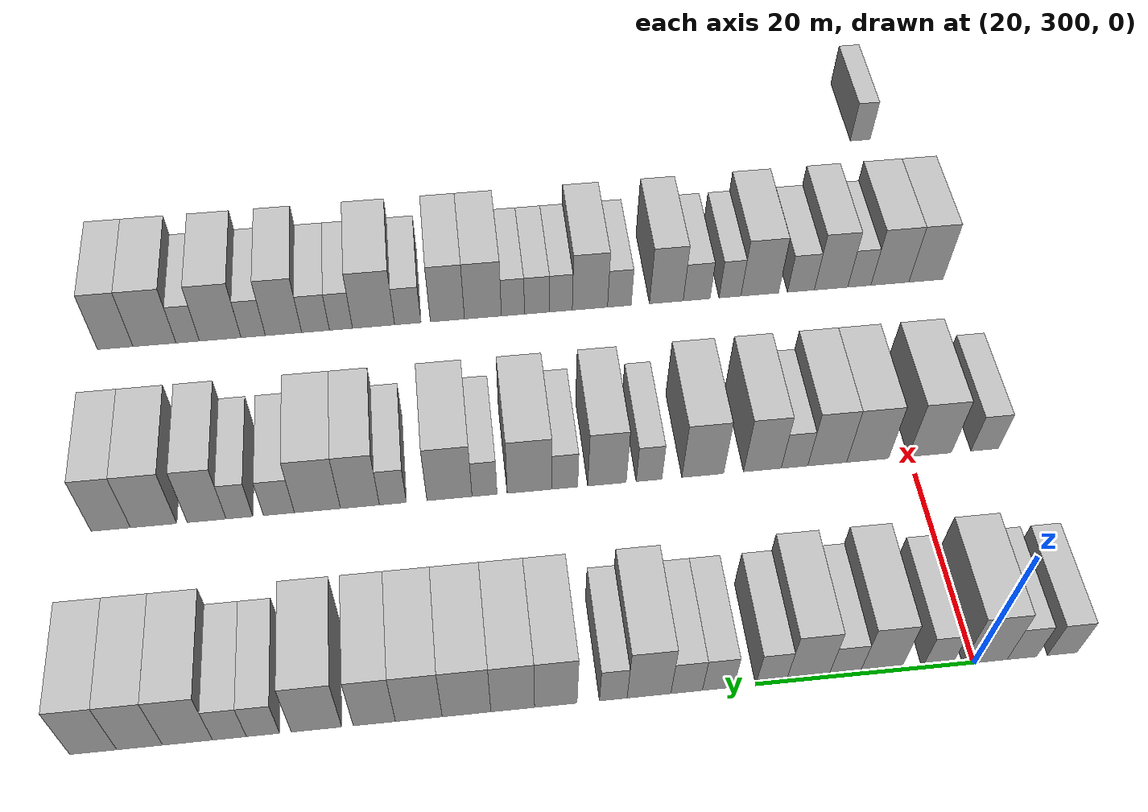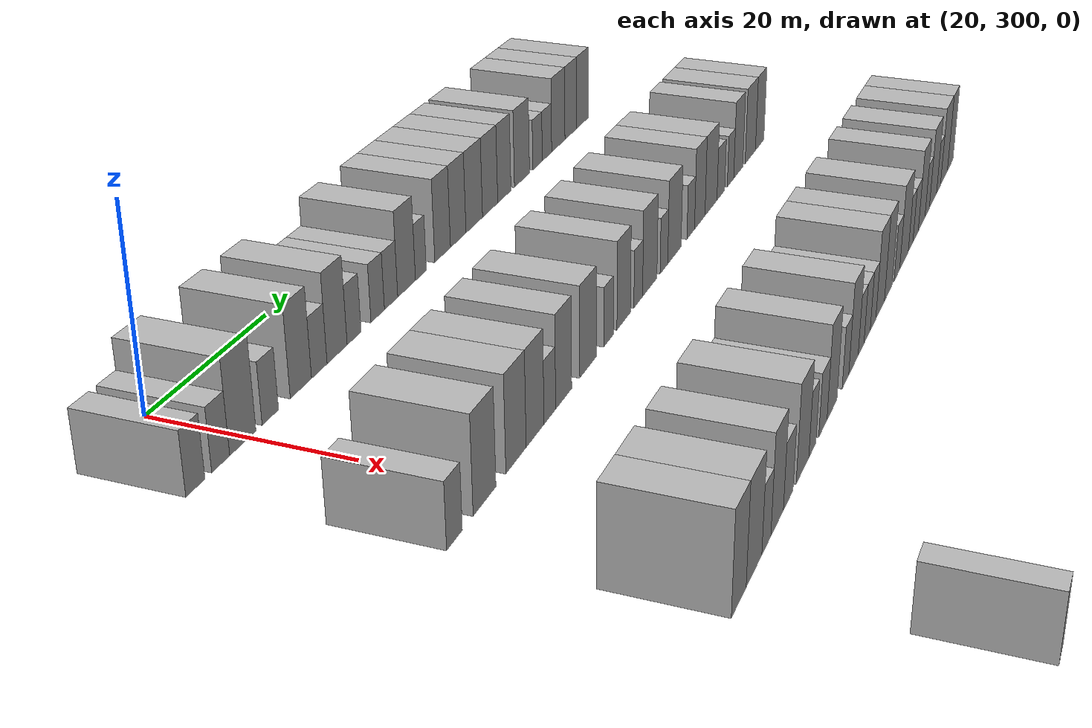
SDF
<sdf version="1.6">
 <world name="default">
  <model name="building_159">
   <static>1</static>
   <pose>25.0000 291.8429 0 0.000000 0.000000 0.000000</pose>
   <link name="link">
    <pose>0 0 3.00 0 0 0</pose>
    <collision name="collision"><geometry><box><size>10.0000 2.7710 6.0000</size></box></geometry></collision>
    <visual name="visual">
     <cast_shadows>0</cast_shadows>
     <geometry><box><size>10.0000 2.7710 6.0000</size></box></geometry>
     <material>
      <script>
       <uri>model://HANNAS_wall/materials/scripts</uri>
       <uri>model://HANNAS_wall/materials/textures</uri>
       <name>vrc/HANNAS_wall</name>
      </script>
     </material>
    </visual>
   </link>
  </model>
  <model name="building_160">
   <static>1</static>
   <pose>25.0000 295.5902 0 0.000000 0.000000 0.000000</pose>
   <link name="link">
    <pose>0 0 3.00 0 0 0</pose>
    <collision name="collision"><geometry><box><size>10.0000 2.7236 6.0000</size></box></geometry></collision>
    <visual name="visual">
     <cast_shadows>0</cast_shadows>
     <geometry><box><size>10.0000 2.7236 6.0000</size></box></geometry>
     <material>
      <script>
       <uri>model://HANNAS_wall/materials/scripts</uri>
       <uri>model://HANNAS_wall/materials/textures</uri>
       <name>vrc/HANNAS_wall</name>
      </script>
     </material>
    </visual>
   </link>
  </model>
  <model name="building_161">
   <static>1</static>
   <pose>25.0000 299.0204 0 0.000000 0.000000 0.000000</pose>
   <link name="link">
    <pose>0 0 4.50 0 0 0</pose>
    <collision name="collision"><geometry><box><size>10.0000 4.1368 9.0000</size></box></geometry></collision>
    <visual name="visual">
     <cast_shadows>0</cast_shadows>
     <geometry><box><size>10.0000 4.1368 9.0000</size></box></geometry>
     <material>
      <script>
       <uri>model://HANNAS_wall/materials/scripts</uri>
       <uri>model://HANNAS_wall/materials/textures</uri>
       <name>vrc/HANNAS_wall</name>
      </script>
     </material>
    </visual>
   </link>
  </model>
  <model name="building_162">
   <static>1</static>
   <pose>25.0000 303.4574 0 0.000000 0.000000 0.000000</pose>
   <link name="link">
    <pose>0 0 3.00 0 0 0</pose>
    <collision name="collision"><geometry><box><size>10.0000 2.7371 6.0000</size></box></geometry></collision>
    <visual name="visual">
     <cast_shadows>0</cast_shadows>
     <geometry><box><size>10.0000 2.7371 6.0000</size></box></geometry>
     <material>
      <script>
       <uri>model://HANNAS_wall/materials/scripts</uri>
       <uri>model://HANNAS_wall/materials/textures</uri>
       <name>vrc/HANNAS_wall</name>
      </script>
     </material>
    </visual>
   </link>
  </model>
  <model name="building_163">
   <static>1</static>
   <pose>25.0000 308.7078 0 0.000000 0.000000 0.000000</pose>
   <link name="link">
    <pose>0 0 4.50 0 0 0</pose>
    <collision name="collision"><geometry><box><size>10.0000 3.7637 9.0000</size></box></geometry></collision>
    <visual name="visual">
     <cast_shadows>0</cast_shadows>
     <geometry><box><size>10.0000 3.7637 9.0000</size></box></geometry>
     <material>
      <script>
       <uri>model://HANNAS_wall/materials/scripts</uri>
       <uri>model://HANNAS_wall/materials/textures</uri>
       <name>vrc/HANNAS_wall</name>
      </script>
     </material>
    </visual>
   </link>
  </model>
  <model name="building_164">
   <static>1</static>
   <pose>25.0000 312.0138 0 0.000000 0.000000 0.000000</pose>
   <link name="link">
    <pose>0 0 3.00 0 0 0</pose>
    <collision name="collision"><geometry><box><size>10.0000 2.8483 6.0000</size></box></geometry></collision>
    <visual name="visual">
     <cast_shadows>0</cast_shadows>
     <geometry><box><size>10.0000 2.8483 6.0000</size></box></geometry>
     <material>
      <script>
       <uri>model://HANNAS_wall/materials/scripts</uri>
       <uri>model://HANNAS_wall/materials/textures</uri>
       <name>vrc/HANNAS_wall</name>
      </script>
     </material>
    </visual>
   </link>
  </model>
  <model name="building_165">
   <static>1</static>
   <pose>25.0000 315.3489 0 0.000000 0.000000 0.000000</pose>
   <link name="link">
    <pose>0 0 4.50 0 0 0</pose>
    <collision name="collision"><geometry><box><size>10.0000 3.8220 9.0000</size></box></geometry></collision>
    <visual name="visual">
     <cast_shadows>0</cast_shadows>
     <geometry><box><size>10.0000 3.8220 9.0000</size></box></geometry>
     <material>
      <script>
       <uri>model://HANNAS_wall/materials/scripts</uri>
       <uri>model://HANNAS_wall/materials/textures</uri>
       <name>vrc/HANNAS_wall</name>
      </script>
     </material>
    </visual>
   </link>
  </model>
  <model name="building_166">
   <static>1</static>
   <pose>25.0000 318.6297 0 0.000000 0.000000 0.000000</pose>
   <link name="link">
    <pose>0 0 3.00 0 0 0</pose>
    <collision name="collision"><geometry><box><size>10.0000 2.7395 6.0000</size></box></geometry></collision>
    <visual name="visual">
     <cast_shadows>0</cast_shadows>
     <geometry><box><size>10.0000 2.7395 6.0000</size></box></geometry>
     <material>
      <script>
       <uri>model://HANNAS_wall/materials/scripts</uri>
       <uri>model://HANNAS_wall/materials/textures</uri>
       <name>vrc/HANNAS_wall</name>
      </script>
     </material>
    </visual>
   </link>
  </model>
  <model name="building_167">
   <static>1</static>
   <pose>25.0000 323.4013 0 0.000000 0.000000 0.000000</pose>
   <link name="link">
    <pose>0 0 3.00 0 0 0</pose>
    <collision name="collision"><geometry><box><size>10.0000 2.8039 6.0000</size></box></geometry></collision>
    <visual name="visual">
     <cast_shadows>0</cast_shadows>
     <geometry><box><size>10.0000 2.8039 6.0000</size></box></geometry>
     <material>
      <script>
       <uri>model://HANNAS_wall/materials/scripts</uri>
       <uri>model://HANNAS_wall/materials/textures</uri>
       <name>vrc/HANNAS_wall</name>
      </script>
     </material>
    </visual>
   </link>
  </model>
  <model name="building_168">
   <static>1</static>
   <pose>25.0000 326.2233 0 0.000000 0.000000 0.000000</pose>
   <link name="link">
    <pose>0 0 3.00 0 0 0</pose>
    <collision name="collision"><geometry><box><size>10.0000 2.8401 6.0000</size></box></geometry></collision>
    <visual name="visual">
     <cast_shadows>0</cast_shadows>
     <geometry><box><size>10.0000 2.8401 6.0000</size></box></geometry>
     <material>
      <script>
       <uri>model://HANNAS_wall/materials/scripts</uri>
       <uri>model://HANNAS_wall/materials/textures</uri>
       <name>vrc/HANNAS_wall</name>
      </script>
     </material>
    </visual>
   </link>
  </model>
  <model name="building_169">
   <static>1</static>
   <pose>25.0000 329.6051 0 0.000000 0.000000 0.000000</pose>
   <link name="link">
    <pose>0 0 4.50 0 0 0</pose>
    <collision name="collision"><geometry><box><size>10.0000 3.9235 9.0000</size></box></geometry></collision>
    <visual name="visual">
     <cast_shadows>0</cast_shadows>
     <geometry><box><size>10.0000 3.9235 9.0000</size></box></geometry>
     <material>
      <script>
       <uri>model://HANNAS_wall/materials/scripts</uri>
       <uri>model://HANNAS_wall/materials/textures</uri>
       <name>vrc/HANNAS_wall</name>
      </script>
     </material>
    </visual>
   </link>
  </model>
  <model name="building_170">
   <static>1</static>
   <pose>25.0000 332.7982 0 0.000000 0.000000 0.000000</pose>
   <link name="link">
    <pose>0 0 3.00 0 0 0</pose>
    <collision name="collision"><geometry><box><size>10.0000 2.4628 6.0000</size></box></geometry></collision>
    <visual name="visual">
     <cast_shadows>0</cast_shadows>
     <geometry><box><size>10.0000 2.4628 6.0000</size></box></geometry>
     <material>
      <script>
       <uri>model://HANNAS_wall/materials/scripts</uri>
       <uri>model://HANNAS_wall/materials/textures</uri>
       <name>vrc/HANNAS_wall</name>
      </script>
     </material>
    </visual>
   </link>
  </model>
  <model name="building_171">
   <static>1</static>
   <pose>25.0000 337.9140 0 0.000000 0.000000 0.000000</pose>
   <link name="link">
    <pose>0 0 4.50 0 0 0</pose>
    <collision name="collision"><geometry><box><size>10.0000 3.7687 9.0000</size></box></geometry></collision>
    <visual name="visual">
     <cast_shadows>0</cast_shadows>
     <geometry><box><size>10.0000 3.7687 9.0000</size></box></geometry>
     <material>
      <script>
       <uri>model://HANNAS_wall/materials/scripts</uri>
       <uri>model://HANNAS_wall/materials/textures</uri>
       <name>vrc/HANNAS_wall</name>
      </script>
     </material>
    </visual>
   </link>
  </model>
  <model name="building_172">
   <static>1</static>
   <pose>25.0000 341.7308 0 0.000000 0.000000 0.000000</pose>
   <link name="link">
    <pose>0 0 4.50 0 0 0</pose>
    <collision name="collision"><geometry><box><size>10.0000 3.8649 9.0000</size></box></geometry></collision>
    <visual name="visual">
     <cast_shadows>0</cast_shadows>
     <geometry><box><size>10.0000 3.8649 9.0000</size></box></geometry>
     <material>
      <script>
       <uri>model://HANNAS_wall/materials/scripts</uri>
       <uri>model://HANNAS_wall/materials/textures</uri>
       <name>vrc/HANNAS_wall</name>
      </script>
     </material>
    </visual>
   </link>
  </model>
  <model name="building_173">
   <static>1</static>
   <pose>25.0000 345.8067 0 0.000000 0.000000 0.000000</pose>
   <link name="link">
    <pose>0 0 4.50 0 0 0</pose>
    <collision name="collision"><geometry><box><size>10.0000 4.2869 9.0000</size></box></geometry></collision>
    <visual name="visual">
     <cast_shadows>0</cast_shadows>
     <geometry><box><size>10.0000 4.2869 9.0000</size></box></geometry>
     <material>
      <script>
       <uri>model://HANNAS_wall/materials/scripts</uri>
       <uri>model://HANNAS_wall/materials/textures</uri>
       <name>vrc/HANNAS_wall</name>
      </script>
     </material>
    </visual>
   </link>
  </model>
  <model name="building_174">
   <static>1</static>
   <pose>25.0000 349.9983 0 0.000000 0.000000 0.000000</pose>
   <link name="link">
    <pose>0 0 4.50 0 0 0</pose>
    <collision name="collision"><geometry><box><size>10.0000 4.0961 9.0000</size></box></geometry></collision>
    <visual name="visual">
     <cast_shadows>0</cast_shadows>
     <geometry><box><size>10.0000 4.0961 9.0000</size></box></geometry>
     <material>
      <script>
       <uri>model://HANNAS_wall/materials/scripts</uri>
       <uri>model://HANNAS_wall/materials/textures</uri>
       <name>vrc/HANNAS_wall</name>
      </script>
     </material>
    </visual>
   </link>
  </model>
  <model name="building_175">
   <static>1</static>
   <pose>25.0000 353.8906 0 0.000000 0.000000 0.000000</pose>
   <link name="link">
    <pose>0 0 4.50 0 0 0</pose>
    <collision name="collision"><geometry><box><size>10.0000 3.6885 9.0000</size></box></geometry></collision>
    <visual name="visual">
     <cast_shadows>0</cast_shadows>
     <geometry><box><size>10.0000 3.6885 9.0000</size></box></geometry>
     <material>
      <script>
       <uri>model://HANNAS_wall/materials/scripts</uri>
       <uri>model://HANNAS_wall/materials/textures</uri>
       <name>vrc/HANNAS_wall</name>
      </script>
     </material>
    </visual>
   </link>
  </model>
  <model name="building_176">
   <static>1</static>
   <pose>25.0000 358.9305 0 0.000000 0.000000 0.000000</pose>
   <link name="link">
    <pose>0 0 4.50 0 0 0</pose>
    <collision name="collision"><geometry><box><size>10.0000 4.3914 9.0000</size></box></geometry></collision>
    <visual name="visual">
     <cast_shadows>0</cast_shadows>
     <geometry><box><size>10.0000 4.3914 9.0000</size></box></geometry>
     <material>
      <script>
       <uri>model://HANNAS_wall/materials/scripts</uri>
       <uri>model://HANNAS_wall/materials/textures</uri>
       <name>vrc/HANNAS_wall</name>
      </script>
     </material>
    </visual>
   </link>
  </model>
  <model name="building_177">
   <static>1</static>
   <pose>25.0000 363.5640 0 0.000000 0.000000 0.000000</pose>
   <link name="link">
    <pose>0 0 3.00 0 0 0</pose>
    <collision name="collision"><geometry><box><size>10.0000 2.8754 6.0000</size></box></geometry></collision>
    <visual name="visual">
     <cast_shadows>0</cast_shadows>
     <geometry><box><size>10.0000 2.8754 6.0000</size></box></geometry>
     <material>
      <script>
       <uri>model://HANNAS_wall/materials/scripts</uri>
       <uri>model://HANNAS_wall/materials/textures</uri>
       <name>vrc/HANNAS_wall</name>
      </script>
     </material>
    </visual>
   </link>
  </model>
  <model name="building_178">
   <static>1</static>
   <pose>25.0000 366.4615 0 0.000000 0.000000 0.000000</pose>
   <link name="link">
    <pose>0 0 3.00 0 0 0</pose>
    <collision name="collision"><geometry><box><size>10.0000 2.9196 6.0000</size></box></geometry></collision>
    <visual name="visual">
     <cast_shadows>0</cast_shadows>
     <geometry><box><size>10.0000 2.9196 6.0000</size></box></geometry>
     <material>
      <script>
       <uri>model://HANNAS_wall/materials/scripts</uri>
       <uri>model://HANNAS_wall/materials/textures</uri>
       <name>vrc/HANNAS_wall</name>
      </script>
     </material>
    </visual>
   </link>
  </model>
  <model name="building_179">
   <static>1</static>
   <pose>25.0000 370.0603 0 0.000000 0.000000 0.000000</pose>
   <link name="link">
    <pose>0 0 4.50 0 0 0</pose>
    <collision name="collision"><geometry><box><size>10.0000 4.2781 9.0000</size></box></geometry></collision>
    <visual name="visual">
     <cast_shadows>0</cast_shadows>
     <geometry><box><size>10.0000 4.2781 9.0000</size></box></geometry>
     <material>
      <script>
       <uri>model://HANNAS_wall/materials/scripts</uri>
       <uri>model://HANNAS_wall/materials/textures</uri>
       <name>vrc/HANNAS_wall</name>
      </script>
     </material>
    </visual>
   </link>
  </model>
  <model name="building_180">
   <static>1</static>
   <pose>25.0000 374.1637 0 0.000000 0.000000 0.000000</pose>
   <link name="link">
    <pose>0 0 4.50 0 0 0</pose>
    <collision name="collision"><geometry><box><size>10.0000 3.9286 9.0000</size></box></geometry></collision>
    <visual name="visual">
     <cast_shadows>0</cast_shadows>
     <geometry><box><size>10.0000 3.9286 9.0000</size></box></geometry>
     <material>
      <script>
       <uri>model://HANNAS_wall/materials/scripts</uri>
       <uri>model://HANNAS_wall/materials/textures</uri>
       <name>vrc/HANNAS_wall</name>
      </script>
     </material>
    </visual>
   </link>
  </model>
  <model name="building_181">
   <static>1</static>
   <pose>25.0000 378.1302 0 0.000000 0.000000 0.000000</pose>
   <link name="link">
    <pose>0 0 4.50 0 0 0</pose>
    <collision name="collision"><geometry><box><size>10.0000 4.0044 9.0000</size></box></geometry></collision>
    <visual name="visual">
     <cast_shadows>0</cast_shadows>
     <geometry><box><size>10.0000 4.0044 9.0000</size></box></geometry>
     <material>
      <script>
       <uri>model://HANNAS_wall/materials/scripts</uri>
       <uri>model://HANNAS_wall/materials/textures</uri>
       <name>vrc/HANNAS_wall</name>
      </script>
     </material>
    </visual>
   </link>
  </model>
  <model name="building_346">
   <static>1</static>
   <pose>47.0000 292.3326 0 0.000000 0.000000 0.000000</pose>
   <link name="link">
    <pose>0 0 3.00 0 0 0</pose>
    <collision name="collision"><geometry><box><size>10.0000 2.8329 6.0000</size></box></geometry></collision>
    <visual name="visual">
     <cast_shadows>0</cast_shadows>
     <geometry><box><size>10.0000 2.8329 6.0000</size></box></geometry>
     <material>
      <script>
       <uri>model://HANNAS_wall/materials/scripts</uri>
       <uri>model://HANNAS_wall/materials/textures</uri>
       <name>vrc/HANNAS_wall</name>
      </script>
     </material>
    </visual>
   </link>
  </model>
  <model name="building_347">
   <static>1</static>
   <pose>47.0000 297.9564 0 0.000000 0.000000 0.000000</pose>
   <link name="link">
    <pose>0 0 4.50 0 0 0</pose>
    <collision name="collision"><geometry><box><size>10.0000 4.4148 9.0000</size></box></geometry></collision>
    <visual name="visual">
     <cast_shadows>0</cast_shadows>
     <geometry><box><size>10.0000 4.4148 9.0000</size></box></geometry>
     <material>
      <script>
       <uri>model://HANNAS_wall/materials/scripts</uri>
       <uri>model://HANNAS_wall/materials/textures</uri>
       <name>vrc/HANNAS_wall</name>
      </script>
     </material>
    </visual>
   </link>
  </model>
  <model name="building_348">
   <static>1</static>
   <pose>47.0000 304.2909 0 0.000000 0.000000 0.000000</pose>
   <link name="link">
    <pose>0 0 4.50 0 0 0</pose>
    <collision name="collision"><geometry><box><size>10.0000 4.2543 9.0000</size></box></geometry></collision>
    <visual name="visual">
     <cast_shadows>0</cast_shadows>
     <geometry><box><size>10.0000 4.2543 9.0000</size></box></geometry>
     <material>
      <script>
       <uri>model://HANNAS_wall/materials/scripts</uri>
       <uri>model://HANNAS_wall/materials/textures</uri>
       <name>vrc/HANNAS_wall</name>
      </script>
     </material>
    </visual>
   </link>
  </model>
  <model name="building_349">
   <static>1</static>
   <pose>47.0000 308.3825 0 0.000000 0.000000 0.000000</pose>
   <link name="link">
    <pose>0 0 4.50 0 0 0</pose>
    <collision name="collision"><geometry><box><size>10.0000 3.9288 9.0000</size></box></geometry></collision>
    <visual name="visual">
     <cast_shadows>0</cast_shadows>
     <geometry><box><size>10.0000 3.9288 9.0000</size></box></geometry>
     <material>
      <script>
       <uri>model://HANNAS_wall/materials/scripts</uri>
       <uri>model://HANNAS_wall/materials/textures</uri>
       <name>vrc/HANNAS_wall</name>
      </script>
     </material>
    </visual>
   </link>
  </model>
  <model name="building_350">
   <static>1</static>
   <pose>47.0000 311.6815 0 0.000000 0.000000 0.000000</pose>
   <link name="link">
    <pose>0 0 3.00 0 0 0</pose>
    <collision name="collision"><geometry><box><size>10.0000 2.6693 6.0000</size></box></geometry></collision>
    <visual name="visual">
     <cast_shadows>0</cast_shadows>
     <geometry><box><size>10.0000 2.6693 6.0000</size></box></geometry>
     <material>
      <script>
       <uri>model://HANNAS_wall/materials/scripts</uri>
       <uri>model://HANNAS_wall/materials/textures</uri>
       <name>vrc/HANNAS_wall</name>
      </script>
     </material>
    </visual>
   </link>
  </model>
  <model name="building_351">
   <static>1</static>
   <pose>47.0000 314.9115 0 0.000000 0.000000 0.000000</pose>
   <link name="link">
    <pose>0 0 4.50 0 0 0</pose>
    <collision name="collision"><geometry><box><size>10.0000 3.7906 9.0000</size></box></geometry></collision>
    <visual name="visual">
     <cast_shadows>0</cast_shadows>
     <geometry><box><size>10.0000 3.7906 9.0000</size></box></geometry>
     <material>
      <script>
       <uri>model://HANNAS_wall/materials/scripts</uri>
       <uri>model://HANNAS_wall/materials/textures</uri>
       <name>vrc/HANNAS_wall</name>
      </script>
     </material>
    </visual>
   </link>
  </model>
  <model name="building_352">
   <static>1</static>
   <pose>47.0000 320.8918 0 0.000000 0.000000 0.000000</pose>
   <link name="link">
    <pose>0 0 4.50 0 0 0</pose>
    <collision name="collision"><geometry><box><size>10.0000 4.1701 9.0000</size></box></geometry></collision>
    <visual name="visual">
     <cast_shadows>0</cast_shadows>
     <geometry><box><size>10.0000 4.1701 9.0000</size></box></geometry>
     <material>
      <script>
       <uri>model://HANNAS_wall/materials/scripts</uri>
       <uri>model://HANNAS_wall/materials/textures</uri>
       <name>vrc/HANNAS_wall</name>
      </script>
     </material>
    </visual>
   </link>
  </model>
  <model name="building_353">
   <static>1</static>
   <pose>47.0000 326.2509 0 0.000000 0.000000 0.000000</pose>
   <link name="link">
    <pose>0 0 3.00 0 0 0</pose>
    <collision name="collision"><geometry><box><size>10.0000 2.5480 6.0000</size></box></geometry></collision>
    <visual name="visual">
     <cast_shadows>0</cast_shadows>
     <geometry><box><size>10.0000 2.5480 6.0000</size></box></geometry>
     <material>
      <script>
       <uri>model://HANNAS_wall/materials/scripts</uri>
       <uri>model://HANNAS_wall/materials/textures</uri>
       <name>vrc/HANNAS_wall</name>
      </script>
     </material>
    </visual>
   </link>
  </model>
  <model name="building_354">
   <static>1</static>
   <pose>47.0000 330.4241 0 0.000000 0.000000 0.000000</pose>
   <link name="link">
    <pose>0 0 4.50 0 0 0</pose>
    <collision name="collision"><geometry><box><size>10.0000 3.7984 9.0000</size></box></geometry></collision>
    <visual name="visual">
     <cast_shadows>0</cast_shadows>
     <geometry><box><size>10.0000 3.7984 9.0000</size></box></geometry>
     <material>
      <script>
       <uri>model://HANNAS_wall/materials/scripts</uri>
       <uri>model://HANNAS_wall/materials/textures</uri>
       <name>vrc/HANNAS_wall</name>
      </script>
     </material>
    </visual>
   </link>
  </model>
  <model name="building_355">
   <static>1</static>
   <pose>47.0000 334.6095 0 0.000000 0.000000 0.000000</pose>
   <link name="link">
    <pose>0 0 3.00 0 0 0</pose>
    <collision name="collision"><geometry><box><size>10.0000 2.5726 6.0000</size></box></geometry></collision>
    <visual name="visual">
     <cast_shadows>0</cast_shadows>
     <geometry><box><size>10.0000 2.5726 6.0000</size></box></geometry>
     <material>
      <script>
       <uri>model://HANNAS_wall/materials/scripts</uri>
       <uri>model://HANNAS_wall/materials/textures</uri>
       <name>vrc/HANNAS_wall</name>
      </script>
     </material>
    </visual>
   </link>
  </model>
  <model name="building_356">
   <static>1</static>
   <pose>47.0000 338.0766 0 0.000000 0.000000 0.000000</pose>
   <link name="link">
    <pose>0 0 4.50 0 0 0</pose>
    <collision name="collision"><geometry><box><size>10.0000 4.3614 9.0000</size></box></geometry></collision>
    <visual name="visual">
     <cast_shadows>0</cast_shadows>
     <geometry><box><size>10.0000 4.3614 9.0000</size></box></geometry>
     <material>
      <script>
       <uri>model://HANNAS_wall/materials/scripts</uri>
       <uri>model://HANNAS_wall/materials/textures</uri>
       <name>vrc/HANNAS_wall</name>
      </script>
     </material>
    </visual>
   </link>
  </model>
  <model name="building_357">
   <static>1</static>
   <pose>47.0000 342.4783 0 0.000000 0.000000 0.000000</pose>
   <link name="link">
    <pose>0 0 3.00 0 0 0</pose>
    <collision name="collision"><geometry><box><size>10.0000 2.4421 6.0000</size></box></geometry></collision>
    <visual name="visual">
     <cast_shadows>0</cast_shadows>
     <geometry><box><size>10.0000 2.4421 6.0000</size></box></geometry>
     <material>
      <script>
       <uri>model://HANNAS_wall/materials/scripts</uri>
       <uri>model://HANNAS_wall/materials/textures</uri>
       <name>vrc/HANNAS_wall</name>
      </script>
     </material>
    </visual>
   </link>
  </model>
  <model name="building_358">
   <static>1</static>
   <pose>47.0000 345.8999 0 0.000000 0.000000 0.000000</pose>
   <link name="link">
    <pose>0 0 4.50 0 0 0</pose>
    <collision name="collision"><geometry><box><size>10.0000 4.4010 9.0000</size></box></geometry></collision>
    <visual name="visual">
     <cast_shadows>0</cast_shadows>
     <geometry><box><size>10.0000 4.4010 9.0000</size></box></geometry>
     <material>
      <script>
       <uri>model://HANNAS_wall/materials/scripts</uri>
       <uri>model://HANNAS_wall/materials/textures</uri>
       <name>vrc/HANNAS_wall</name>
      </script>
     </material>
    </visual>
   </link>
  </model>
  <model name="building_359">
   <static>1</static>
   <pose>47.0000 351.4130 0 0.000000 0.000000 0.000000</pose>
   <link name="link">
    <pose>0 0 3.00 0 0 0</pose>
    <collision name="collision"><geometry><box><size>10.0000 2.6252 6.0000</size></box></geometry></collision>
    <visual name="visual">
     <cast_shadows>0</cast_shadows>
     <geometry><box><size>10.0000 2.6252 6.0000</size></box></geometry>
     <material>
      <script>
       <uri>model://HANNAS_wall/materials/scripts</uri>
       <uri>model://HANNAS_wall/materials/textures</uri>
       <name>vrc/HANNAS_wall</name>
      </script>
     </material>
    </visual>
   </link>
  </model>
  <model name="building_360">
   <static>1</static>
   <pose>47.0000 354.6051 0 0.000000 0.000000 0.000000</pose>
   <link name="link">
    <pose>0 0 4.50 0 0 0</pose>
    <collision name="collision"><geometry><box><size>10.0000 3.7589 9.0000</size></box></geometry></collision>
    <visual name="visual">
     <cast_shadows>0</cast_shadows>
     <geometry><box><size>10.0000 3.7589 9.0000</size></box></geometry>
     <material>
      <script>
       <uri>model://HANNAS_wall/materials/scripts</uri>
       <uri>model://HANNAS_wall/materials/textures</uri>
       <name>vrc/HANNAS_wall</name>
      </script>
     </material>
    </visual>
   </link>
  </model>
  <model name="building_361">
   <static>1</static>
   <pose>47.0000 358.7075 0 0.000000 0.000000 0.000000</pose>
   <link name="link">
    <pose>0 0 4.50 0 0 0</pose>
    <collision name="collision"><geometry><box><size>10.0000 4.4459 9.0000</size></box></geometry></collision>
    <visual name="visual">
     <cast_shadows>0</cast_shadows>
     <geometry><box><size>10.0000 4.4459 9.0000</size></box></geometry>
     <material>
      <script>
       <uri>model://HANNAS_wall/materials/scripts</uri>
       <uri>model://HANNAS_wall/materials/textures</uri>
       <name>vrc/HANNAS_wall</name>
      </script>
     </material>
    </visual>
   </link>
  </model>
  <model name="building_362">
   <static>1</static>
   <pose>47.0000 362.4267 0 0.000000 0.000000 0.000000</pose>
   <link name="link">
    <pose>0 0 3.00 0 0 0</pose>
    <collision name="collision"><geometry><box><size>10.0000 2.9925 6.0000</size></box></geometry></collision>
    <visual name="visual">
     <cast_shadows>0</cast_shadows>
     <geometry><box><size>10.0000 2.9925 6.0000</size></box></geometry>
     <material>
      <script>
       <uri>model://HANNAS_wall/materials/scripts</uri>
       <uri>model://HANNAS_wall/materials/textures</uri>
       <name>vrc/HANNAS_wall</name>
      </script>
     </material>
    </visual>
   </link>
  </model>
  <model name="building_363">
   <static>1</static>
   <pose>47.0000 366.2043 0 0.000000 0.000000 0.000000</pose>
   <link name="link">
    <pose>0 0 3.00 0 0 0</pose>
    <collision name="collision"><geometry><box><size>10.0000 2.5626 6.0000</size></box></geometry></collision>
    <visual name="visual">
     <cast_shadows>0</cast_shadows>
     <geometry><box><size>10.0000 2.5626 6.0000</size></box></geometry>
     <material>
      <script>
       <uri>model://HANNAS_wall/materials/scripts</uri>
       <uri>model://HANNAS_wall/materials/textures</uri>
       <name>vrc/HANNAS_wall</name>
      </script>
     </material>
    </visual>
   </link>
  </model>
  <model name="building_364">
   <static>1</static>
   <pose>47.0000 369.3404 0 0.000000 0.000000 0.000000</pose>
   <link name="link">
    <pose>0 0 4.50 0 0 0</pose>
    <collision name="collision"><geometry><box><size>10.0000 3.7097 9.0000</size></box></geometry></collision>
    <visual name="visual">
     <cast_shadows>0</cast_shadows>
     <geometry><box><size>10.0000 3.7097 9.0000</size></box></geometry>
     <material>
      <script>
       <uri>model://HANNAS_wall/materials/scripts</uri>
       <uri>model://HANNAS_wall/materials/textures</uri>
       <name>vrc/HANNAS_wall</name>
      </script>
     </material>
    </visual>
   </link>
  </model>
  <model name="building_365">
   <static>1</static>
   <pose>47.0000 374.3937 0 0.000000 0.000000 0.000000</pose>
   <link name="link">
    <pose>0 0 4.50 0 0 0</pose>
    <collision name="collision"><geometry><box><size>10.0000 4.3970 9.0000</size></box></geometry></collision>
    <visual name="visual">
     <cast_shadows>0</cast_shadows>
     <geometry><box><size>10.0000 4.3970 9.0000</size></box></geometry>
     <material>
      <script>
       <uri>model://HANNAS_wall/materials/scripts</uri>
       <uri>model://HANNAS_wall/materials/textures</uri>
       <name>vrc/HANNAS_wall</name>
      </script>
     </material>
    </visual>
   </link>
  </model>
  <model name="building_366">
   <static>1</static>
   <pose>47.0000 378.4579 0 0.000000 0.000000 0.000000</pose>
   <link name="link">
    <pose>0 0 4.50 0 0 0</pose>
    <collision name="collision"><geometry><box><size>10.0000 3.7314 9.0000</size></box></geometry></collision>
    <visual name="visual">
     <cast_shadows>0</cast_shadows>
     <geometry><box><size>10.0000 3.7314 9.0000</size></box></geometry>
     <material>
      <script>
       <uri>model://HANNAS_wall/materials/scripts</uri>
       <uri>model://HANNAS_wall/materials/textures</uri>
       <name>vrc/HANNAS_wall</name>
      </script>
     </material>
    </visual>
   </link>
  </model>
  <model name="building_542">
   <static>1</static>
   <pose>69.0000 292.2369 0 0.000000 0.000000 0.000000</pose>
   <link name="link">
    <pose>0 0 4.50 0 0 0</pose>
    <collision name="collision"><geometry><box><size>10.0000 3.8203 9.0000</size></box></geometry></collision>
    <visual name="visual">
     <cast_shadows>0</cast_shadows>
     <geometry><box><size>10.0000 3.8203 9.0000</size></box></geometry>
     <material>
      <script>
       <uri>model://HANNAS_wall/materials/scripts</uri>
       <uri>model://HANNAS_wall/materials/textures</uri>
       <name>vrc/HANNAS_wall</name>
      </script>
     </material>
    </visual>
   </link>
  </model>
  <model name="building_543">
   <static>1</static>
   <pose>69.0000 296.2705 0 0.000000 0.000000 0.000000</pose>
   <link name="link">
    <pose>0 0 4.50 0 0 0</pose>
    <collision name="collision"><geometry><box><size>10.0000 4.2469 9.0000</size></box></geometry></collision>
    <visual name="visual">
     <cast_shadows>0</cast_shadows>
     <geometry><box><size>10.0000 4.2469 9.0000</size></box></geometry>
     <material>
      <script>
       <uri>model://HANNAS_wall/materials/scripts</uri>
       <uri>model://HANNAS_wall/materials/textures</uri>
       <name>vrc/HANNAS_wall</name>
      </script>
     </material>
    </visual>
   </link>
  </model>
  <model name="building_544">
   <static>1</static>
   <pose>69.0000 299.6836 0 0.000000 0.000000 0.000000</pose>
   <link name="link">
    <pose>0 0 3.00 0 0 0</pose>
    <collision name="collision"><geometry><box><size>10.0000 2.5794 6.0000</size></box></geometry></collision>
    <visual name="visual">
     <cast_shadows>0</cast_shadows>
     <geometry><box><size>10.0000 2.5794 6.0000</size></box></geometry>
     <material>
      <script>
       <uri>model://HANNAS_wall/materials/scripts</uri>
       <uri>model://HANNAS_wall/materials/textures</uri>
       <name>vrc/HANNAS_wall</name>
      </script>
     </material>
    </visual>
   </link>
  </model>
  <model name="building_545">
   <static>1</static>
   <pose>69.0000 302.8278 0 0.000000 0.000000 0.000000</pose>
   <link name="link">
    <pose>0 0 4.50 0 0 0</pose>
    <collision name="collision"><geometry><box><size>10.0000 3.7089 9.0000</size></box></geometry></collision>
    <visual name="visual">
     <cast_shadows>0</cast_shadows>
     <geometry><box><size>10.0000 3.7089 9.0000</size></box></geometry>
     <material>
      <script>
       <uri>model://HANNAS_wall/materials/scripts</uri>
       <uri>model://HANNAS_wall/materials/textures</uri>
       <name>vrc/HANNAS_wall</name>
      </script>
     </material>
    </visual>
   </link>
  </model>
  <model name="building_546">
   <static>1</static>
   <pose>69.0000 306.1717 0 0.000000 0.000000 0.000000</pose>
   <link name="link">
    <pose>0 0 3.00 0 0 0</pose>
    <collision name="collision"><geometry><box><size>10.0000 2.9790 6.0000</size></box></geometry></collision>
    <visual name="visual">
     <cast_shadows>0</cast_shadows>
     <geometry><box><size>10.0000 2.9790 6.0000</size></box></geometry>
     <material>
      <script>
       <uri>model://HANNAS_wall/materials/scripts</uri>
       <uri>model://HANNAS_wall/materials/textures</uri>
       <name>vrc/HANNAS_wall</name>
      </script>
     </material>
    </visual>
   </link>
  </model>
  <model name="building_547">
   <static>1</static>
   <pose>69.0000 310.7349 0 0.000000 0.000000 0.000000</pose>
   <link name="link">
    <pose>0 0 4.50 0 0 0</pose>
    <collision name="collision"><geometry><box><size>10.0000 4.1475 9.0000</size></box></geometry></collision>
    <visual name="visual">
     <cast_shadows>0</cast_shadows>
     <geometry><box><size>10.0000 4.1475 9.0000</size></box></geometry>
     <material>
      <script>
       <uri>model://HANNAS_wall/materials/scripts</uri>
       <uri>model://HANNAS_wall/materials/textures</uri>
       <name>vrc/HANNAS_wall</name>
      </script>
     </material>
    </visual>
   </link>
  </model>
  <model name="building_548">
   <static>1</static>
   <pose>69.0000 314.0125 0 0.000000 0.000000 0.000000</pose>
   <link name="link">
    <pose>0 0 3.00 0 0 0</pose>
    <collision name="collision"><geometry><box><size>10.0000 2.4077 6.0000</size></box></geometry></collision>
    <visual name="visual">
     <cast_shadows>0</cast_shadows>
     <geometry><box><size>10.0000 2.4077 6.0000</size></box></geometry>
     <material>
      <script>
       <uri>model://HANNAS_wall/materials/scripts</uri>
       <uri>model://HANNAS_wall/materials/textures</uri>
       <name>vrc/HANNAS_wall</name>
      </script>
     </material>
    </visual>
   </link>
  </model>
  <model name="building_549">
   <static>1</static>
   <pose>69.0000 317.6864 0 0.000000 0.000000 0.000000</pose>
   <link name="link">
    <pose>0 0 3.00 0 0 0</pose>
    <collision name="collision"><geometry><box><size>10.0000 2.9403 6.0000</size></box></geometry></collision>
    <visual name="visual">
     <cast_shadows>0</cast_shadows>
     <geometry><box><size>10.0000 2.9403 6.0000</size></box></geometry>
     <material>
      <script>
       <uri>model://HANNAS_wall/materials/scripts</uri>
       <uri>model://HANNAS_wall/materials/textures</uri>
       <name>vrc/HANNAS_wall</name>
      </script>
     </material>
    </visual>
   </link>
  </model>
  <model name="building_550">
   <static>1</static>
   <pose>69.0000 321.0021 0 0.000000 0.000000 0.000000</pose>
   <link name="link">
    <pose>0 0 4.50 0 0 0</pose>
    <collision name="collision"><geometry><box><size>10.0000 3.6911 9.0000</size></box></geometry></collision>
    <visual name="visual">
     <cast_shadows>0</cast_shadows>
     <geometry><box><size>10.0000 3.6911 9.0000</size></box></geometry>
     <material>
      <script>
       <uri>model://HANNAS_wall/materials/scripts</uri>
       <uri>model://HANNAS_wall/materials/textures</uri>
       <name>vrc/HANNAS_wall</name>
      </script>
     </material>
    </visual>
   </link>
  </model>
  <model name="building_551">
   <static>1</static>
   <pose>69.0000 326.1384 0 0.000000 0.000000 0.000000</pose>
   <link name="link">
    <pose>0 0 3.00 0 0 0</pose>
    <collision name="collision"><geometry><box><size>10.0000 2.5814 6.0000</size></box></geometry></collision>
    <visual name="visual">
     <cast_shadows>0</cast_shadows>
     <geometry><box><size>10.0000 2.5814 6.0000</size></box></geometry>
     <material>
      <script>
       <uri>model://HANNAS_wall/materials/scripts</uri>
       <uri>model://HANNAS_wall/materials/textures</uri>
       <name>vrc/HANNAS_wall</name>
      </script>
     </material>
    </visual>
   </link>
  </model>
  <model name="building_552">
   <static>1</static>
   <pose>69.0000 329.3424 0 0.000000 0.000000 0.000000</pose>
   <link name="link">
    <pose>0 0 4.50 0 0 0</pose>
    <collision name="collision"><geometry><box><size>10.0000 3.8267 9.0000</size></box></geometry></collision>
    <visual name="visual">
     <cast_shadows>0</cast_shadows>
     <geometry><box><size>10.0000 3.8267 9.0000</size></box></geometry>
     <material>
      <script>
       <uri>model://HANNAS_wall/materials/scripts</uri>
       <uri>model://HANNAS_wall/materials/textures</uri>
       <name>vrc/HANNAS_wall</name>
      </script>
     </material>
    </visual>
   </link>
  </model>
  <model name="building_553">
   <static>1</static>
   <pose>69.0000 332.4902 0 0.000000 0.000000 0.000000</pose>
   <link name="link">
    <pose>0 0 3.00 0 0 0</pose>
    <collision name="collision"><geometry><box><size>10.0000 2.4690 6.0000</size></box></geometry></collision>
    <visual name="visual">
     <cast_shadows>0</cast_shadows>
     <geometry><box><size>10.0000 2.4690 6.0000</size></box></geometry>
     <material>
      <script>
       <uri>model://HANNAS_wall/materials/scripts</uri>
       <uri>model://HANNAS_wall/materials/textures</uri>
       <name>vrc/HANNAS_wall</name>
      </script>
     </material>
    </visual>
   </link>
  </model>
  <model name="building_554">
   <static>1</static>
   <pose>69.0000 335.0813 0 0.000000 0.000000 0.000000</pose>
   <link name="link">
    <pose>0 0 3.00 0 0 0</pose>
    <collision name="collision"><geometry><box><size>10.0000 2.7132 6.0000</size></box></geometry></collision>
    <visual name="visual">
     <cast_shadows>0</cast_shadows>
     <geometry><box><size>10.0000 2.7132 6.0000</size></box></geometry>
     <material>
      <script>
       <uri>model://HANNAS_wall/materials/scripts</uri>
       <uri>model://HANNAS_wall/materials/textures</uri>
       <name>vrc/HANNAS_wall</name>
      </script>
     </material>
    </visual>
   </link>
  </model>
  <model name="building_555">
   <static>1</static>
   <pose>69.0000 337.6806 0 0.000000 0.000000 0.000000</pose>
   <link name="link">
    <pose>0 0 3.00 0 0 0</pose>
    <collision name="collision"><geometry><box><size>10.0000 2.4853 6.0000</size></box></geometry></collision>
    <visual name="visual">
     <cast_shadows>0</cast_shadows>
     <geometry><box><size>10.0000 2.4853 6.0000</size></box></geometry>
     <material>
      <script>
       <uri>model://HANNAS_wall/materials/scripts</uri>
       <uri>model://HANNAS_wall/materials/textures</uri>
       <name>vrc/HANNAS_wall</name>
      </script>
     </material>
    </visual>
   </link>
  </model>
  <model name="building_556">
   <static>1</static>
   <pose>69.0000 340.9086 0 0.000000 0.000000 0.000000</pose>
   <link name="link">
    <pose>0 0 4.50 0 0 0</pose>
    <collision name="collision"><geometry><box><size>10.0000 3.9706 9.0000</size></box></geometry></collision>
    <visual name="visual">
     <cast_shadows>0</cast_shadows>
     <geometry><box><size>10.0000 3.9706 9.0000</size></box></geometry>
     <material>
      <script>
       <uri>model://HANNAS_wall/materials/scripts</uri>
       <uri>model://HANNAS_wall/materials/textures</uri>
       <name>vrc/HANNAS_wall</name>
      </script>
     </material>
    </visual>
   </link>
  </model>
  <model name="building_557">
   <static>1</static>
   <pose>69.0000 344.7215 0 0.000000 0.000000 0.000000</pose>
   <link name="link">
    <pose>0 0 4.50 0 0 0</pose>
    <collision name="collision"><geometry><box><size>10.0000 3.6552 9.0000</size></box></geometry></collision>
    <visual name="visual">
     <cast_shadows>0</cast_shadows>
     <geometry><box><size>10.0000 3.6552 9.0000</size></box></geometry>
     <material>
      <script>
       <uri>model://HANNAS_wall/materials/scripts</uri>
       <uri>model://HANNAS_wall/materials/textures</uri>
       <name>vrc/HANNAS_wall</name>
      </script>
     </material>
    </visual>
   </link>
  </model>
  <model name="building_558">
   <static>1</static>
   <pose>69.0000 348.9625 0 0.000000 0.000000 0.000000</pose>
   <link name="link">
    <pose>0 0 3.00 0 0 0</pose>
    <collision name="collision"><geometry><box><size>10.0000 2.8268 6.0000</size></box></geometry></collision>
    <visual name="visual">
     <cast_shadows>0</cast_shadows>
     <geometry><box><size>10.0000 2.8268 6.0000</size></box></geometry>
     <material>
      <script>
       <uri>model://HANNAS_wall/materials/scripts</uri>
       <uri>model://HANNAS_wall/materials/textures</uri>
       <name>vrc/HANNAS_wall</name>
      </script>
     </material>
    </visual>
   </link>
  </model>
  <model name="building_559">
   <static>1</static>
   <pose>69.0000 352.6167 0 0.000000 0.000000 0.000000</pose>
   <link name="link">
    <pose>0 0 4.50 0 0 0</pose>
    <collision name="collision"><geometry><box><size>10.0000 4.4816 9.0000</size></box></geometry></collision>
    <visual name="visual">
     <cast_shadows>0</cast_shadows>
     <geometry><box><size>10.0000 4.4816 9.0000</size></box></geometry>
     <material>
      <script>
       <uri>model://HANNAS_wall/materials/scripts</uri>
       <uri>model://HANNAS_wall/materials/textures</uri>
       <name>vrc/HANNAS_wall</name>
      </script>
     </material>
    </visual>
   </link>
  </model>
  <model name="building_560">
   <static>1</static>
   <pose>69.0000 356.0834 0 0.000000 0.000000 0.000000</pose>
   <link name="link">
    <pose>0 0 3.00 0 0 0</pose>
    <collision name="collision"><geometry><box><size>10.0000 2.4519 6.0000</size></box></geometry></collision>
    <visual name="visual">
     <cast_shadows>0</cast_shadows>
     <geometry><box><size>10.0000 2.4519 6.0000</size></box></geometry>
     <material>
      <script>
       <uri>model://HANNAS_wall/materials/scripts</uri>
       <uri>model://HANNAS_wall/materials/textures</uri>
       <name>vrc/HANNAS_wall</name>
      </script>
     </material>
    </visual>
   </link>
  </model>
  <model name="building_561">
   <static>1</static>
   <pose>69.0000 358.7801 0 0.000000 0.000000 0.000000</pose>
   <link name="link">
    <pose>0 0 3.00 0 0 0</pose>
    <collision name="collision"><geometry><box><size>10.0000 2.9415 6.0000</size></box></geometry></collision>
    <visual name="visual">
     <cast_shadows>0</cast_shadows>
     <geometry><box><size>10.0000 2.9415 6.0000</size></box></geometry>
     <material>
      <script>
       <uri>model://HANNAS_wall/materials/scripts</uri>
       <uri>model://HANNAS_wall/materials/textures</uri>
       <name>vrc/HANNAS_wall</name>
      </script>
     </material>
    </visual>
   </link>
  </model>
  <model name="building_562">
   <static>1</static>
   <pose>69.0000 362.1694 0 0.000000 0.000000 0.000000</pose>
   <link name="link">
    <pose>0 0 4.50 0 0 0</pose>
    <collision name="collision"><geometry><box><size>10.0000 3.8371 9.0000</size></box></geometry></collision>
    <visual name="visual">
     <cast_shadows>0</cast_shadows>
     <geometry><box><size>10.0000 3.8371 9.0000</size></box></geometry>
     <material>
      <script>
       <uri>model://HANNAS_wall/materials/scripts</uri>
       <uri>model://HANNAS_wall/materials/textures</uri>
       <name>vrc/HANNAS_wall</name>
      </script>
     </material>
    </visual>
   </link>
  </model>
  <model name="building_563">
   <static>1</static>
   <pose>69.0000 365.3711 0 0.000000 0.000000 0.000000</pose>
   <link name="link">
    <pose>0 0 3.00 0 0 0</pose>
    <collision name="collision"><geometry><box><size>10.0000 2.5663 6.0000</size></box></geometry></collision>
    <visual name="visual">
     <cast_shadows>0</cast_shadows>
     <geometry><box><size>10.0000 2.5663 6.0000</size></box></geometry>
     <material>
      <script>
       <uri>model://HANNAS_wall/materials/scripts</uri>
       <uri>model://HANNAS_wall/materials/textures</uri>
       <name>vrc/HANNAS_wall</name>
      </script>
     </material>
    </visual>
   </link>
  </model>
  <model name="building_564">
   <static>1</static>
   <pose>69.0000 368.8464 0 0.000000 0.000000 0.000000</pose>
   <link name="link">
    <pose>0 0 4.50 0 0 0</pose>
    <collision name="collision"><geometry><box><size>10.0000 4.3842 9.0000</size></box></geometry></collision>
    <visual name="visual">
     <cast_shadows>0</cast_shadows>
     <geometry><box><size>10.0000 4.3842 9.0000</size></box></geometry>
     <material>
      <script>
       <uri>model://HANNAS_wall/materials/scripts</uri>
       <uri>model://HANNAS_wall/materials/textures</uri>
       <name>vrc/HANNAS_wall</name>
      </script>
     </material>
    </visual>
   </link>
  </model>
  <model name="building_565">
   <static>1</static>
   <pose>69.0000 372.2619 0 0.000000 0.000000 0.000000</pose>
   <link name="link">
    <pose>0 0 3.00 0 0 0</pose>
    <collision name="collision"><geometry><box><size>10.0000 2.4469 6.0000</size></box></geometry></collision>
    <visual name="visual">
     <cast_shadows>0</cast_shadows>
     <geometry><box><size>10.0000 2.4469 6.0000</size></box></geometry>
     <material>
      <script>
       <uri>model://HANNAS_wall/materials/scripts</uri>
       <uri>model://HANNAS_wall/materials/textures</uri>
       <name>vrc/HANNAS_wall</name>
      </script>
     </material>
    </visual>
   </link>
  </model>
  <model name="building_566">
   <static>1</static>
   <pose>69.0000 375.7235 0 0.000000 0.000000 0.000000</pose>
   <link name="link">
    <pose>0 0 4.50 0 0 0</pose>
    <collision name="collision"><geometry><box><size>10.0000 4.4763 9.0000</size></box></geometry></collision>
    <visual name="visual">
     <cast_shadows>0</cast_shadows>
     <geometry><box><size>10.0000 4.4763 9.0000</size></box></geometry>
     <material>
      <script>
       <uri>model://HANNAS_wall/materials/scripts</uri>
       <uri>model://HANNAS_wall/materials/textures</uri>
       <name>vrc/HANNAS_wall</name>
      </script>
     </material>
    </visual>
   </link>
  </model>
  <model name="building_567">
   <static>1</static>
   <pose>69.0000 379.8129 0 0.000000 0.000000 0.000000</pose>
   <link name="link">
    <pose>0 0 4.50 0 0 0</pose>
    <collision name="collision"><geometry><box><size>10.0000 3.7025 9.0000</size></box></geometry></collision>
    <visual name="visual">
     <cast_shadows>0</cast_shadows>
     <geometry><box><size>10.0000 3.7025 9.0000</size></box></geometry>
     <material>
      <script>
       <uri>model://HANNAS_wall/materials/scripts</uri>
       <uri>model://HANNAS_wall/materials/textures</uri>
       <name>vrc/HANNAS_wall</name>
      </script>
     </material>
    </visual>
   </link>
  </model>
  <model name="building_722">
   <static>1</static>
   <pose>91.0000 294.1337 0 0.000000 0.000000 0.000000</pose>
   <link name="link">
    <pose>0 0 3.00 0 0 0</pose>
    <collision name="collision"><geometry><box><size>10.0000 2.4110 6.0000</size></box></geometry></collision>
    <visual name="visual">
     <cast_shadows>0</cast_shadows>
     <geometry><box><size>10.0000 2.4110 6.0000</size></box></geometry>
     <material>
      <script>
       <uri>model://HANNAS_wall/materials/scripts</uri>
       <uri>model://HANNAS_wall/materials/textures</uri>
       <name>vrc/HANNAS_wall</name>
      </script>
     </material>
    </visual>
   </link>
  </model>
 </world>
</sdf>
